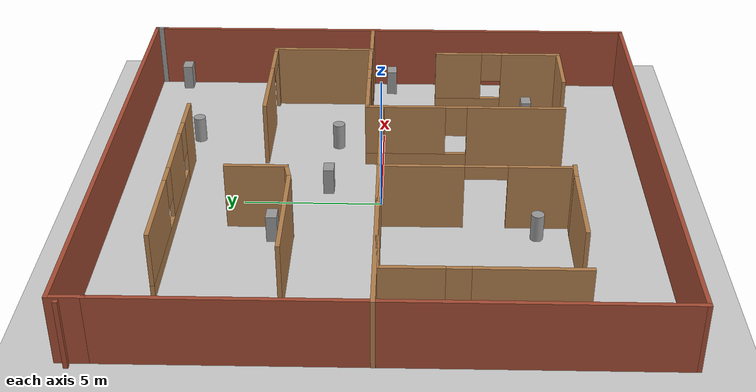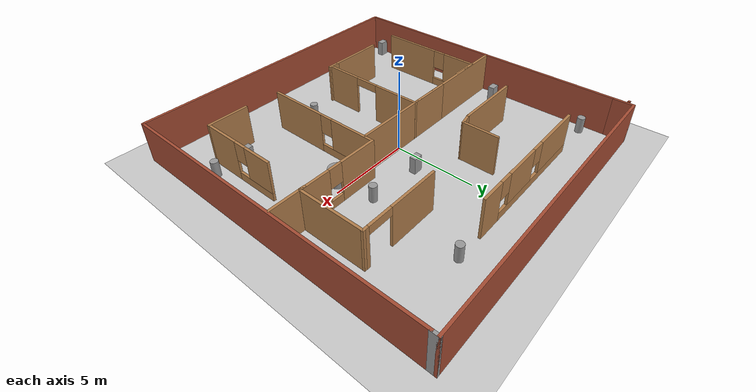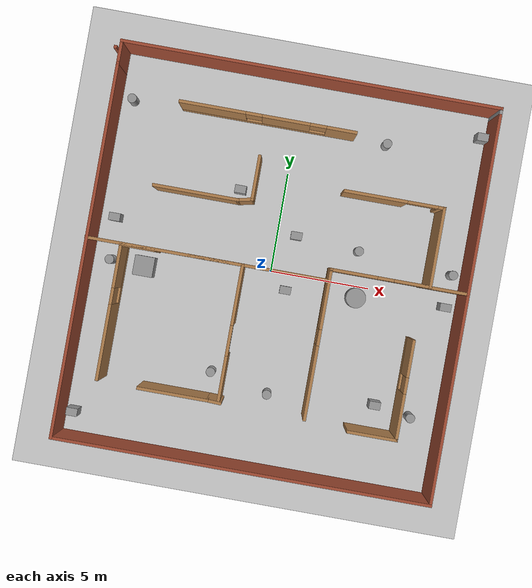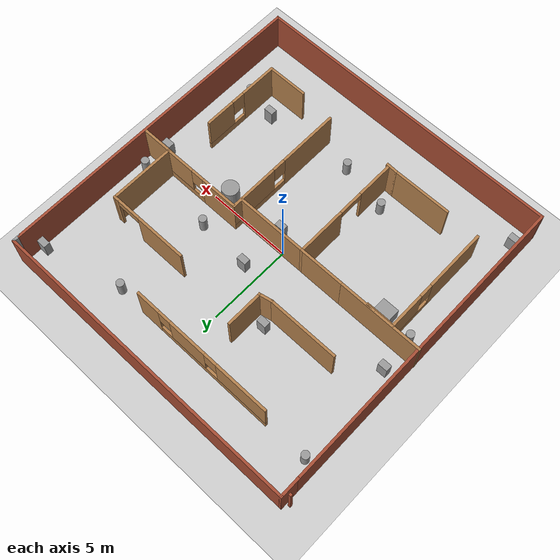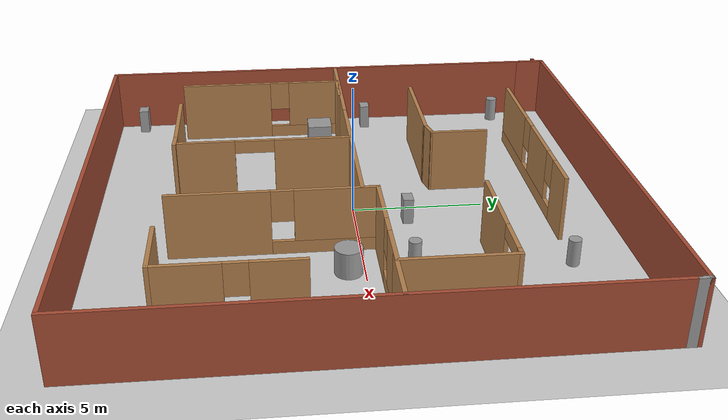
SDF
<sdf version="1.7">
 <world name="default">
  <light name="sun" type="directional">
   <pose>0 0 10 0 -0 0</pose>
   <diffuse>0.8 0.8 0.8 1</diffuse>
   <specular>0.2 0.2 0.2 1</specular>
   <attenuation>
    <range>1000</range>
    <constant>0.9</constant>
    <linear>0.01</linear>
    <quadratic>0.001</quadratic>
   </attenuation>
   <direction>-0.5 0.1 -0.9</direction>
   <spot><inner_angle>0</inner_angle><outer_angle>0</outer_angle><falloff>0</falloff></spot>
  </light>
  <model name="ground_plane">
   <static>1</static>
   <link name="link">
    <collision name="collision">
     <geometry><plane><normal>0 0 1</normal><size>100 100</size></plane></geometry>
     <surface><friction><ode><mu>100</mu><mu2>50</mu2></ode></friction></surface>
    </collision>
    <visual name="visual">
     <cast_shadows>0</cast_shadows>
     <geometry><plane><normal>0 0 1</normal><size>100 100</size></plane></geometry>
     <material>
      <script><uri>file://media/materials/scripts/gazebo.material</uri><name>Gazebo/Grey</name></script>
     </material>
    </visual>
   </link>
  </model>
  <gravity>0 0 -9.8</gravity>
  <magnetic_field>6e-06 2.3e-05 -4.2e-05</magnetic_field>
  <atmosphere type="adiabatic"/>
  <physics type="ode">
   <max_step_size>0.001</max_step_size>
   <real_time_factor>1</real_time_factor>
   <real_time_update_rate>1000</real_time_update_rate>
  </physics>
  <scene><ambient>0.4 0.4 0.4 1</ambient><background>0.7 0.7 0.7 1</background><shadows>1</shadows></scene>
  <audio><device>default</device></audio>
  <spherical_coordinates>
   <surface_model>EARTH_WGS84</surface_model>
   <latitude_deg>0</latitude_deg>
   <longitude_deg>0</longitude_deg>
   <elevation>0</elevation>
   <heading_deg>0</heading_deg>
  </spherical_coordinates>
  <model name="WorldA">
   <pose>0.162375 -0.049252 0 0 -0 0</pose>
   <link name="Wall_10">
    <collision name="Wall_10_Collision">
     <geometry><box><size>0.15 0.15 2.5</size></box></geometry>
     <pose>0 0 1.25 0 -0 0</pose>
    </collision>
    <visual name="Wall_10_Visual">
     <pose>0 0 1.25 0 -0 0</pose>
     <geometry><box><size>0.15 0.15 2.5</size></box></geometry>
     <material>
      <script><uri>file://media/materials/scripts/gazebo.material</uri><name>Gazebo/Bricks</name></script>
      <ambient>1 1 1 1</ambient>
     </material>
     <meta><layer>0</layer></meta>
    </visual>
    <pose>-9.425 9.375 0 0 -0 0</pose>
   </link>
   <link name="Wall_13">
    <collision name="Wall_13_Collision">
     <geometry><box><size>1.25 0.15 2.5</size></box></geometry>
     <pose>0 0 1.25 0 -0 0</pose>
    </collision>
    <visual name="Wall_13_Visual">
     <pose>0 0 1.25 0 -0 0</pose>
     <geometry><box><size>1.25 0.15 2.5</size></box></geometry>
     <material>
      <script><uri>file://media/materials/scripts/gazebo.material</uri><name>Gazebo/Bricks</name></script>
      <ambient>1 1 1 1</ambient>
     </material>
     <meta><layer>0</layer></meta>
    </visual>
    <pose>-9.175 9.175 0 0 -0 1.5708</pose>
   </link>
   <link name="Wall_14">
    <collision name="Wall_14_Collision">
     <geometry><box><size>18.75 0.15 2.5</size></box></geometry>
     <pose>0 0 1.25 0 -0 0</pose>
    </collision>
    <visual name="Wall_14_Visual">
     <pose>0 0 1.25 0 -0 0</pose>
     <geometry><box><size>18.75 0.15 2.5</size></box></geometry>
     <material>
      <script><uri>file://media/materials/scripts/gazebo.material</uri><name>Gazebo/Bricks</name></script>
      <ambient>1 1 1 1</ambient>
     </material>
     <meta><layer>0</layer></meta>
    </visual>
    <pose>0.125 9.725 0 0 -0 0</pose>
   </link>
   <link name="Wall_15">
    <collision name="Wall_15_Collision">
     <geometry><box><size>0.15 0.15 2.5</size></box></geometry>
     <pose>0 0 1.25 0 -0 0</pose>
    </collision>
    <visual name="Wall_15_Visual">
     <pose>0 0 1.25 0 -0 0</pose>
     <geometry><box><size>0.15 0.15 2.5</size></box></geometry>
     <material>
      <script><uri>file://media/materials/scripts/gazebo.material</uri><name>Gazebo/Grey</name></script>
      <ambient>1 1 1 1</ambient>
     </material>
     <meta><layer>0</layer></meta>
    </visual>
    <pose>9.425 9.725 0 0 -0 0</pose>
   </link>
   <link name="Wall_16">
    <collision name="Wall_16_Collision">
     <geometry><box><size>0.5 0.15 2.5</size></box></geometry>
     <pose>0 0 1.25 0 -0 0</pose>
    </collision>
    <visual name="Wall_16_Visual">
     <pose>0 0 1.25 0 -0 0</pose>
     <geometry><box><size>0.5 0.15 2.5</size></box></geometry>
     <material>
      <script><uri>file://media/materials/scripts/gazebo.material</uri><name>Gazebo/Grey</name></script>
      <ambient>1 1 1 1</ambient>
     </material>
     <meta><layer>0</layer></meta>
    </visual>
    <pose>9.425 9.55 0 0 -0 -1.5708</pose>
   </link>
   <link name="Wall_20">
    <pose>2.71542 -3.02463 0 0 -0 1.5708</pose>
    <visual name="Wall_20_Visual_0">
     <pose>-1.90731 0 1.25 0 -0 0</pose>
     <geometry><box><size>3.68538 0.15 2.5</size></box></geometry>
     <material>
      <script><uri>file://media/materials/scripts/gazebo.material</uri><name>Gazebo/Wood</name></script>
      <ambient>1 1 1 1</ambient>
     </material>
     <meta><layer>0</layer></meta>
    </visual>
    <collision name="Wall_20_Collision_0">
     <geometry><box><size>3.68538 0.15 2.5</size></box></geometry>
     <pose>-1.90731 0 1.25 0 -0 0</pose>
    </collision>
    <visual name="Wall_20_Visual_1">
     <pose>1.84269 0 0.25 0 -0 0</pose>
     <geometry><box><size>3.81462 0.15 0.5</size></box></geometry>
     <material>
      <script><uri>file://media/materials/scripts/gazebo.material</uri><name>Gazebo/Wood</name></script>
      <ambient>1 1 1 1</ambient>
     </material>
     <meta><layer>0</layer></meta>
    </visual>
    <collision name="Wall_20_Collision_1">
     <geometry><box><size>3.81462 0.15 0.5</size></box></geometry>
     <pose>1.84269 0 0.25 0 -0 0</pose>
    </collision>
    <visual name="Wall_20_Visual_2">
     <pose>2.24269 0 1.5 0 -0 0</pose>
     <geometry><box><size>3.01462 0.15 2</size></box></geometry>
     <material>
      <script><uri>file://media/materials/scripts/gazebo.material</uri><name>Gazebo/Wood</name></script>
      <ambient>1 1 1 1</ambient>
     </material>
     <meta><layer>0</layer></meta>
    </visual>
    <collision name="Wall_20_Collision_2">
     <geometry><box><size>3.01462 0.15 2</size></box></geometry>
     <pose>2.24269 0 1.5 0 -0 0</pose>
    </collision>
    <visual name="Wall_20_Visual_3">
     <pose>0.335379 0 1.9 0 -0 0</pose>
     <geometry><box><size>0.8 0.15 1.2</size></box></geometry>
     <material>
      <script><uri>file://media/materials/scripts/gazebo.material</uri><name>Gazebo/Wood</name></script>
      <ambient>1 1 1 1</ambient>
     </material>
     <meta><layer>0</layer></meta>
    </visual>
    <collision name="Wall_20_Collision_3">
     <geometry><box><size>0.8 0.15 1.2</size></box></geometry>
     <pose>0.335379 0 1.9 0 -0 0</pose>
    </collision>
   </link>
   <link name="Wall_21">
    <pose>5.14042 0.650374 0 0 -0 0</pose>
    <visual name="Wall_21_Visual_0">
     <pose>-1.32571 0 1.25 0 -0 0</pose>
     <geometry><box><size>2.34859 0.15 2.5</size></box></geometry>
     <material>
      <script><uri>file://media/materials/scripts/gazebo.material</uri><name>Gazebo/Wood</name></script>
      <ambient>1 1 1 1</ambient>
     </material>
     <meta><layer>0</layer></meta>
    </visual>
    <collision name="Wall_21_Collision_0">
     <geometry><box><size>2.34859 0.15 2.5</size></box></geometry>
     <pose>-1.32571 0 1.25 0 -0 0</pose>
    </collision>
    <visual name="Wall_21_Visual_1">
     <pose>1.17429 0 0.25 0 -0 0</pose>
     <geometry><box><size>2.65141 0.15 0.5</size></box></geometry>
     <material>
      <script><uri>file://media/materials/scripts/gazebo.material</uri><name>Gazebo/Wood</name></script>
      <ambient>1 1 1 1</ambient>
     </material>
     <meta><layer>0</layer></meta>
    </visual>
    <collision name="Wall_21_Collision_1">
     <geometry><box><size>2.65141 0.15 0.5</size></box></geometry>
     <pose>1.17429 0 0.25 0 -0 0</pose>
    </collision>
    <visual name="Wall_21_Visual_2">
     <pose>1.57429 0 1.5 0 -0 0</pose>
     <geometry><box><size>1.85141 0.15 2</size></box></geometry>
     <material>
      <script><uri>file://media/materials/scripts/gazebo.material</uri><name>Gazebo/Wood</name></script>
      <ambient>1 1 1 1</ambient>
     </material>
     <meta><layer>0</layer></meta>
    </visual>
    <collision name="Wall_21_Collision_2">
     <geometry><box><size>1.85141 0.15 2</size></box></geometry>
     <pose>1.57429 0 1.5 0 -0 0</pose>
    </collision>
    <visual name="Wall_21_Visual_3">
     <pose>0.248586 0 1.9 0 -0 0</pose>
     <geometry><box><size>0.8 0.15 1.2</size></box></geometry>
     <material>
      <script><uri>file://media/materials/scripts/gazebo.material</uri><name>Gazebo/Wood</name></script>
      <ambient>1 1 1 1</ambient>
     </material>
     <meta><layer>0</layer></meta>
    </visual>
    <collision name="Wall_21_Collision_3">
     <geometry><box><size>0.8 0.15 1.2</size></box></geometry>
     <pose>0.248586 0 1.9 0 -0 0</pose>
    </collision>
   </link>
   <link name="Wall_22">
    <collision name="Wall_22_Collision">
     <geometry><box><size>4 0.15 2.5</size></box></geometry>
     <pose>0 0 1.25 0 -0 0</pose>
    </collision>
    <visual name="Wall_22_Visual">
     <pose>0 0 1.25 0 -0 0</pose>
     <geometry><box><size>4 0.15 2.5</size></box></geometry>
     <material>
      <script><uri>file://media/materials/scripts/gazebo.material</uri><name>Gazebo/Wood</name></script>
      <ambient>1 1 1 1</ambient>
     </material>
     <meta><layer>0</layer></meta>
    </visual>
    <pose>7.56542 2.57537 0 0 -0 1.5708</pose>
   </link>
   <link name="Wall_23">
    <pose>5.14042 4.50037 0 0 -0 3.14159</pose>
    <visual name="Wall_23_Visual_0">
     <pose>-2.31215 0 1.25 0 -0 0</pose>
     <geometry><box><size>0.375693 0.15 2.5</size></box></geometry>
     <material>
      <script><uri>file://media/materials/scripts/gazebo.material</uri><name>Gazebo/Wood</name></script>
      <ambient>1 1 1 1</ambient>
     </material>
     <meta><layer>0</layer></meta>
    </visual>
    <collision name="Wall_23_Collision_0">
     <geometry><box><size>0.375693 0.15 2.5</size></box></geometry>
     <pose>-2.31215 0 1.25 0 -0 0</pose>
    </collision>
    <visual name="Wall_23_Visual_1">
     <pose>0.937847 0 1.25 0 -0 0</pose>
     <geometry><box><size>3.12431 0.15 2.5</size></box></geometry>
     <material>
      <script><uri>file://media/materials/scripts/gazebo.material</uri><name>Gazebo/Wood</name></script>
      <ambient>1 1 1 1</ambient>
     </material>
     <meta><layer>0</layer></meta>
    </visual>
    <collision name="Wall_23_Collision_1">
     <geometry><box><size>3.12431 0.15 2.5</size></box></geometry>
     <pose>0.937847 0 1.25 0 -0 0</pose>
    </collision>
    <visual name="Wall_23_Visual_2">
     <pose>-1.37431 0 2.25 0 -0 0</pose>
     <geometry><box><size>1.5 0.15 0.5</size></box></geometry>
     <material>
      <script><uri>file://media/materials/scripts/gazebo.material</uri><name>Gazebo/Wood</name></script>
      <ambient>1 1 1 1</ambient>
     </material>
     <meta><layer>0</layer></meta>
    </visual>
    <collision name="Wall_23_Collision_2">
     <geometry><box><size>1.5 0.15 0.5</size></box></geometry>
     <pose>-1.37431 0 2.25 0 -0 0</pose>
    </collision>
   </link>
   <link name="Wall_25">
    <pose>-1.58458 7.35037 0 0 -0 3.14159</pose>
    <visual name="Wall_25_Visual_0">
     <pose>-3.62285 0 1.25 0 -0 0</pose>
     <geometry><box><size>1.5043 0.15 2.5</size></box></geometry>
     <material>
      <script><uri>file://media/materials/scripts/gazebo.material</uri><name>Gazebo/Wood</name></script>
      <ambient>1 1 1 1</ambient>
     </material>
     <meta><layer>0</layer></meta>
    </visual>
    <collision name="Wall_25_Collision_0">
     <geometry><box><size>1.5043 0.15 2.5</size></box></geometry>
     <pose>-3.62285 0 1.25 0 -0 0</pose>
    </collision>
    <visual name="Wall_25_Visual_1">
     <pose>0.752148 0 0.25 0 -0 0</pose>
     <geometry><box><size>7.2457 0.15 0.5</size></box></geometry>
     <material>
      <script><uri>file://media/materials/scripts/gazebo.material</uri><name>Gazebo/Wood</name></script>
      <ambient>1 1 1 1</ambient>
     </material>
     <meta><layer>0</layer></meta>
    </visual>
    <collision name="Wall_25_Collision_1">
     <geometry><box><size>7.2457 0.15 0.5</size></box></geometry>
     <pose>0.752148 0 0.25 0 -0 0</pose>
    </collision>
    <visual name="Wall_25_Visual_2">
     <pose>-0.88766 0 1.5 0 -0 0</pose>
     <geometry><box><size>2.36609 0.15 2</size></box></geometry>
     <material>
      <script><uri>file://media/materials/scripts/gazebo.material</uri><name>Gazebo/Wood</name></script>
      <ambient>1 1 1 1</ambient>
     </material>
     <meta><layer>0</layer></meta>
    </visual>
    <collision name="Wall_25_Collision_2">
     <geometry><box><size>2.36609 0.15 2</size></box></geometry>
     <pose>-0.88766 0 1.5 0 -0 0</pose>
    </collision>
    <visual name="Wall_25_Visual_3">
     <pose>2.73519 0 1.5 0 -0 0</pose>
     <geometry><box><size>3.27962 0.15 2</size></box></geometry>
     <material>
      <script><uri>file://media/materials/scripts/gazebo.material</uri><name>Gazebo/Wood</name></script>
      <ambient>1 1 1 1</ambient>
     </material>
     <meta><layer>0</layer></meta>
    </visual>
    <collision name="Wall_25_Collision_3">
     <geometry><box><size>3.27962 0.15 2</size></box></geometry>
     <pose>2.73519 0 1.5 0 -0 0</pose>
    </collision>
    <visual name="Wall_25_Visual_4">
     <pose>-2.4707 0 1.9 0 -0 0</pose>
     <geometry><box><size>0.8 0.15 1.2</size></box></geometry>
     <material>
      <script><uri>file://media/materials/scripts/gazebo.material</uri><name>Gazebo/Wood</name></script>
      <ambient>1 1 1 1</ambient>
     </material>
     <meta><layer>0</layer></meta>
    </visual>
    <collision name="Wall_25_Collision_4">
     <geometry><box><size>0.8 0.15 1.2</size></box></geometry>
     <pose>-2.4707 0 1.9 0 -0 0</pose>
    </collision>
    <visual name="Wall_25_Visual_5">
     <pose>0.695384 0 1.9 0 -0 0</pose>
     <geometry><box><size>0.8 0.15 1.2</size></box></geometry>
     <material>
      <script><uri>file://media/materials/scripts/gazebo.material</uri><name>Gazebo/Wood</name></script>
      <ambient>1 1 1 1</ambient>
     </material>
     <meta><layer>0</layer></meta>
    </visual>
    <collision name="Wall_25_Collision_5">
     <geometry><box><size>0.8 0.15 1.2</size></box></geometry>
     <pose>0.695384 0 1.9 0 -0 0</pose>
    </collision>
   </link>
   <link name="Wall_28">
    <pose>-1.53458 -3.19963 0 0 -0 1.5708</pose>
    <visual name="Wall_28_Visual_0">
     <pose>-2.26463 0 1.25 0 -0 0</pose>
     <geometry><box><size>2.22073 0.15 2.5</size></box></geometry>
     <material>
      <script><uri>file://media/materials/scripts/gazebo.material</uri><name>Gazebo/Wood</name></script>
      <ambient>1 1 1 1</ambient>
     </material>
     <meta><layer>0</layer></meta>
    </visual>
    <collision name="Wall_28_Collision_0">
     <geometry><box><size>2.22073 0.15 2.5</size></box></geometry>
     <pose>-2.26463 0 1.25 0 -0 0</pose>
    </collision>
    <visual name="Wall_28_Visual_1">
     <pose>1.86037 0 1.25 0 -0 0</pose>
     <geometry><box><size>3.02927 0.15 2.5</size></box></geometry>
     <material>
      <script><uri>file://media/materials/scripts/gazebo.material</uri><name>Gazebo/Wood</name></script>
      <ambient>1 1 1 1</ambient>
     </material>
     <meta><layer>0</layer></meta>
    </visual>
    <collision name="Wall_28_Collision_1">
     <geometry><box><size>3.02927 0.15 2.5</size></box></geometry>
     <pose>1.86037 0 1.25 0 -0 0</pose>
    </collision>
    <visual name="Wall_28_Visual_2">
     <pose>-0.404269 0 2.25 0 -0 0</pose>
     <geometry><box><size>1.5 0.15 0.5</size></box></geometry>
     <material>
      <script><uri>file://media/materials/scripts/gazebo.material</uri><name>Gazebo/Wood</name></script>
      <ambient>1 1 1 1</ambient>
     </material>
     <meta><layer>0</layer></meta>
    </visual>
    <collision name="Wall_28_Collision_2">
     <geometry><box><size>1.5 0.15 0.5</size></box></geometry>
     <pose>-0.404269 0 2.25 0 -0 0</pose>
    </collision>
   </link>
   <link name="Wall_29">
    <collision name="Wall_29_Collision">
     <geometry><box><size>2.75 0.15 2.5</size></box></geometry>
     <pose>0 0 1.25 0 -0 0</pose>
    </collision>
    <visual name="Wall_29_Visual">
     <pose>0 0 1.25 0 -0 0</pose>
     <geometry><box><size>2.75 0.15 2.5</size></box></geometry>
     <material>
      <script><uri>file://media/materials/scripts/gazebo.material</uri><name>Gazebo/Wood</name></script>
      <ambient>1 1 1 1</ambient>
     </material>
     <meta><layer>0</layer></meta>
    </visual>
    <pose>-2.83458 0.100374 0 0 -0 3.14159</pose>
   </link>
   <link name="Wall_32">
    <pose>-7.48642 -3.25891 0 0 -0 1.5708</pose>
    <visual name="Wall_32_Visual_0">
     <pose>-1.49713 0 1.25 0 -0 0</pose>
     <geometry><box><size>3.75574 0.15 2.5</size></box></geometry>
     <material>
      <script><uri>file://media/materials/scripts/gazebo.material</uri><name>Gazebo/Wood</name></script>
      <ambient>1 1 1 1</ambient>
     </material>
     <meta><layer>0</layer></meta>
    </visual>
    <collision name="Wall_32_Collision_0">
     <geometry><box><size>3.75574 0.15 2.5</size></box></geometry>
     <pose>-1.49713 0 1.25 0 -0 0</pose>
    </collision>
    <visual name="Wall_32_Visual_1">
     <pose>1.87787 0 0.25 0 -0 0</pose>
     <geometry><box><size>2.99426 0.15 0.5</size></box></geometry>
     <material>
      <script><uri>file://media/materials/scripts/gazebo.material</uri><name>Gazebo/Wood</name></script>
      <ambient>1 1 1 1</ambient>
     </material>
     <meta><layer>0</layer></meta>
    </visual>
    <collision name="Wall_32_Collision_1">
     <geometry><box><size>2.99426 0.15 0.5</size></box></geometry>
     <pose>1.87787 0 0.25 0 -0 0</pose>
    </collision>
    <visual name="Wall_32_Visual_2">
     <pose>2.27787 0 1.5 0 -0 0</pose>
     <geometry><box><size>2.19426 0.15 2</size></box></geometry>
     <material>
      <script><uri>file://media/materials/scripts/gazebo.material</uri><name>Gazebo/Wood</name></script>
      <ambient>1 1 1 1</ambient>
     </material>
     <meta><layer>0</layer></meta>
    </visual>
    <collision name="Wall_32_Collision_2">
     <geometry><box><size>2.19426 0.15 2</size></box></geometry>
     <pose>2.27787 0 1.5 0 -0 0</pose>
    </collision>
    <visual name="Wall_32_Visual_3">
     <pose>0.780736 0 1.9 0 -0 0</pose>
     <geometry><box><size>0.8 0.15 1.2</size></box></geometry>
     <material>
      <script><uri>file://media/materials/scripts/gazebo.material</uri><name>Gazebo/Wood</name></script>
      <ambient>1 1 1 1</ambient>
     </material>
     <meta><layer>0</layer></meta>
    </visual>
    <collision name="Wall_32_Collision_3">
     <geometry><box><size>0.8 0.15 1.2</size></box></geometry>
     <pose>0.780736 0 1.9 0 -0 0</pose>
    </collision>
   </link>
   <link name="Wall_33">
    <collision name="Wall_33_Collision">
     <geometry><box><size>1.75 0.15 2.5</size></box></geometry>
     <pose>0 0 1.25 0 -0 0</pose>
    </collision>
    <visual name="Wall_33_Visual">
     <pose>0 0 1.25 0 -0 0</pose>
     <geometry><box><size>1.75 0.15 2.5</size></box></geometry>
     <material>
      <script><uri>file://media/materials/scripts/gazebo.material</uri><name>Gazebo/Wood</name></script>
      <ambient>1 1 1 1</ambient>
     </material>
     <meta><layer>0</layer></meta>
    </visual>
    <pose>-6.68642 0.041089 0 0 -0 0</pose>
   </link>
   <link name="Wall_35">
    <collision name="Wall_35_Collision">
     <geometry><box><size>4.25 0.15 2.5</size></box></geometry>
     <pose>0 0 1.25 0 -0 0</pose>
    </collision>
    <visual name="Wall_35_Visual">
     <pose>0 0 1.25 0 -0 0</pose>
     <geometry><box><size>4.25 0.15 2.5</size></box></geometry>
     <material>
      <script><uri>file://media/materials/scripts/gazebo.material</uri><name>Gazebo/Wood</name></script>
      <ambient>1 1 1 1</ambient>
     </material>
     <meta><layer>0</layer></meta>
    </visual>
    <pose>-4.38106 3.15043 0 0 -0 0</pose>
   </link>
   <link name="Wall_38">
    <collision name="Wall_38_Collision">
     <geometry><box><size>2.5 0.15 2.5</size></box></geometry>
     <pose>0 0 1.25 0 -0 0</pose>
    </collision>
    <visual name="Wall_38_Visual">
     <pose>0 0 1.25 0 -0 0</pose>
     <geometry><box><size>2.5 0.15 2.5</size></box></geometry>
     <material>
      <script><uri>file://media/materials/scripts/gazebo.material</uri><name>Gazebo/Wood</name></script>
      <ambient>1 1 1 1</ambient>
     </material>
     <meta><layer>0</layer></meta>
    </visual>
    <pose>6.07151 -6.9107 0 0 -0 0</pose>
   </link>
   <link name="Wall_39">
    <pose>7.2465 -4.4857 0 0 -0 1.5708</pose>
    <visual name="Wall_39_Visual_0">
     <pose>-1.32571 0 1.25 0 -0 0</pose>
     <geometry><box><size>2.34859 0.15 2.5</size></box></geometry>
     <material>
      <script><uri>file://media/materials/scripts/gazebo.material</uri><name>Gazebo/Wood</name></script>
      <ambient>1 1 1 1</ambient>
     </material>
     <meta><layer>0</layer></meta>
    </visual>
    <collision name="Wall_39_Collision_0">
     <geometry><box><size>2.34859 0.15 2.5</size></box></geometry>
     <pose>-1.32571 0 1.25 0 -0 0</pose>
    </collision>
    <visual name="Wall_39_Visual_1">
     <pose>1.17429 0 0.25 0 -0 0</pose>
     <geometry><box><size>2.65141 0.15 0.5</size></box></geometry>
     <material>
      <script><uri>file://media/materials/scripts/gazebo.material</uri><name>Gazebo/Wood</name></script>
      <ambient>1 1 1 1</ambient>
     </material>
     <meta><layer>0</layer></meta>
    </visual>
    <collision name="Wall_39_Collision_1">
     <geometry><box><size>2.65141 0.15 0.5</size></box></geometry>
     <pose>1.17429 0 0.25 0 -0 0</pose>
    </collision>
    <visual name="Wall_39_Visual_2">
     <pose>1.57429 0 1.5 0 -0 0</pose>
     <geometry><box><size>1.85141 0.15 2</size></box></geometry>
     <material>
      <script><uri>file://media/materials/scripts/gazebo.material</uri><name>Gazebo/Wood</name></script>
      <ambient>1 1 1 1</ambient>
     </material>
     <meta><layer>0</layer></meta>
    </visual>
    <collision name="Wall_39_Collision_2">
     <geometry><box><size>1.85141 0.15 2</size></box></geometry>
     <pose>1.57429 0 1.5 0 -0 0</pose>
    </collision>
    <visual name="Wall_39_Visual_3">
     <pose>0.248586 0 1.9 0 -0 0</pose>
     <geometry><box><size>0.8 0.15 1.2</size></box></geometry>
     <material>
      <script><uri>file://media/materials/scripts/gazebo.material</uri><name>Gazebo/Wood</name></script>
      <ambient>1 1 1 1</ambient>
     </material>
     <meta><layer>0</layer></meta>
    </visual>
    <collision name="Wall_39_Collision_3">
     <geometry><box><size>0.8 0.15 1.2</size></box></geometry>
     <pose>0.248586 0 1.9 0 -0 0</pose>
    </collision>
   </link>
   <link name="Wall_43">
    <collision name="Wall_43_Collision">
     <geometry><box><size>3.5 0.15 2.5</size></box></geometry>
     <pose>0 0 1.25 0 -0 0</pose>
    </collision>
    <visual name="Wall_43_Visual">
     <pose>0 0 1.25 0 -0 0</pose>
     <geometry><box><size>3.5 0.15 2.5</size></box></geometry>
     <material>
      <script><uri>file://media/materials/scripts/gazebo.material</uri><name>Gazebo/Wood</name></script>
      <ambient>1 1 1 1</ambient>
     </material>
     <meta><layer>0</layer></meta>
    </visual>
    <pose>-3.77105 -6.62927 0 0 -0 0</pose>
   </link>
   <link name="Wall_44">
    <collision name="Wall_44_Collision">
     <geometry><box><size>0.739326 0.15 2.5</size></box></geometry>
     <pose>0 0 1.25 0 -0 0</pose>
    </collision>
    <visual name="Wall_44_Visual">
     <pose>0 0 1.25 0 -0 0</pose>
     <geometry><box><size>0.739326 0.15 2.5</size></box></geometry>
     <material>
      <script><uri>file://media/materials/scripts/gazebo.material</uri><name>Gazebo/Wood</name></script>
      <ambient>1 1 1 1</ambient>
     </material>
     <meta><layer>0</layer></meta>
    </visual>
    <pose>-1.73132 -6.64239 0 0 -0 -0.044532</pose>
   </link>
   <link name="Wall_48">
    <collision name="Wall_48_Collision">
     <geometry><box><size>2.25 0.15 2.5</size></box></geometry>
     <pose>0 0 1.25 0 -0 0</pose>
    </collision>
    <visual name="Wall_48_Visual">
     <pose>0 0 1.25 0 -0 0</pose>
     <geometry><box><size>2.25 0.15 2.5</size></box></geometry>
     <material>
      <script><uri>file://media/materials/scripts/gazebo.material</uri><name>Gazebo/Wood</name></script>
      <ambient>1 1 1 1</ambient>
     </material>
     <meta><layer>0</layer></meta>
    </visual>
    <pose>-1.64674 4.35187 0 0 -0 -1.5708</pose>
   </link>
   <link name="Wall_49">
    <collision name="Wall_49_Collision">
     <geometry><box><size>0.850869 0.15 2.5</size></box></geometry>
     <pose>0 0 1.25 0 -0 0</pose>
    </collision>
    <visual name="Wall_49_Visual">
     <pose>0 0 1.25 0 -0 0</pose>
     <geometry><box><size>0.850869 0.15 2.5</size></box></geometry>
     <material>
      <script><uri>file://media/materials/scripts/gazebo.material</uri><name>Gazebo/Wood</name></script>
      <ambient>1 1 1 1</ambient>
     </material>
     <meta><layer>0</layer></meta>
    </visual>
    <pose>-1.9889 3.22615 0 0 -0 -2.9238</pose>
   </link>
   <link name="Wall_5">
    <collision name="Wall_5_Collision">
     <geometry><box><size>18.5 0.15 2.5</size></box></geometry>
     <pose>0 0 1.25 0 -0 0</pose>
    </collision>
    <visual name="Wall_5_Visual">
     <pose>0 0 1.25 0 -0 0</pose>
     <geometry><box><size>18.5 0.15 2.5</size></box></geometry>
     <material>
      <script><uri>file://media/materials/scripts/gazebo.material</uri><name>Gazebo/Bricks</name></script>
      <ambient>1 1 1 1</ambient>
     </material>
     <meta><layer>0</layer></meta>
    </visual>
    <pose>-9.175 -0.549999 0 0 -0 1.5708</pose>
   </link>
   <link name="Wall_7">
    <collision name="Wall_7_Collision">
     <geometry><box><size>18.75 0.15 2.5</size></box></geometry>
     <pose>0 0 1.25 0 -0 0</pose>
    </collision>
    <visual name="Wall_7_Visual">
     <pose>0 0 1.25 0 -0 0</pose>
     <geometry><box><size>18.75 0.15 2.5</size></box></geometry>
     <material>
      <script><uri>file://media/materials/scripts/gazebo.material</uri><name>Gazebo/Bricks</name></script>
      <ambient>1 1 1 1</ambient>
     </material>
     <meta><layer>0</layer></meta>
    </visual>
    <pose>0.125 -9.725 0 0 -0 0</pose>
   </link>
   <link name="Wall_8">
    <collision name="Wall_8_Collision">
     <geometry><box><size>19.25 0.15 2.5</size></box></geometry>
     <pose>0 0 1.25 0 -0 0</pose>
    </collision>
    <visual name="Wall_8_Visual">
     <pose>0 0 1.25 0 -0 0</pose>
     <geometry><box><size>19.25 0.15 2.5</size></box></geometry>
     <material>
      <script><uri>file://media/materials/scripts/gazebo.material</uri><name>Gazebo/Bricks</name></script>
      <ambient>1 1 1 1</ambient>
     </material>
     <meta><layer>0</layer></meta>
    </visual>
    <pose>9.425 -0.174999 0 0 -0 1.5708</pose>
   </link>
   <static>1</static>
  </model>
  <model name="world_AB">
   <pose>0.268356 0.314358 0 0 -0 0</pose>
   <link name="Wall_2">
    <collision name="Wall_2_Collision">
     <geometry><box><size>12 0.15 2.5</size></box></geometry>
     <pose>0 0 1.25 0 -0 0</pose>
    </collision>
    <visual name="Wall_2_Visual">
     <pose>0 0 1.25 0 -0 0</pose>
     <geometry><box><size>12 0.15 2.5</size></box></geometry>
     <material>
      <script><uri>file://media/materials/scripts/gazebo.material</uri><name>Gazebo/Wood</name></script>
      <ambient>1 1 1 1</ambient>
     </material>
     <meta><layer>0</layer></meta>
    </visual>
    <pose>-3.3735 -0.266002 0 0 -0 0</pose>
   </link>
   <link name="Wall_4">
    <collision name="Wall_4_Collision">
     <geometry><box><size>2.25 0.15 2.5</size></box></geometry>
     <pose>0 0 1.25 0 -0 0</pose>
    </collision>
    <visual name="Wall_4_Visual">
     <pose>0 0 1.25 0 -0 0</pose>
     <geometry><box><size>2.25 0.15 2.5</size></box></geometry>
     <material>
      <script><uri>file://media/materials/scripts/gazebo.material</uri><name>Gazebo/Wood</name></script>
      <ambient>1 1 1 1</ambient>
     </material>
     <meta><layer>0</layer></meta>
    </visual>
    <pose>8.2485 0.266002 0 0 -0 3.14159</pose>
   </link>
   <static>1</static>
  </model>
  <model name="unit_cylinder">
   <pose>4.40633 -0.567615 0.5 1e-06 -0 -1e-06</pose>
   <link name="link">
    <inertial>
     <mass>1</mass>
     <inertia><ixx>0.145833</ixx><ixy>0</ixy><ixz>0</ixz><iyy>0.145833</iyy><iyz>0</iyz><izz>0.125</izz></inertia>
    </inertial>
    <collision name="collision">
     <geometry><cylinder><radius>0.499997</radius><length>1</length></cylinder></geometry>
    </collision>
    <visual name="visual">
     <geometry><cylinder><radius>0.499997</radius><length>1</length></cylinder></geometry>
     <material>
      <script><name>Gazebo/Grey</name><uri>file://media/materials/scripts/gazebo.material</uri></script>
     </material>
    </visual>
   </link>
  </model>
  <model name="unit_cylinder_clone">
   <pose>-7.99895 -0.819979 0.499991 0 -0 3e-06</pose>
   <link name="link">
    <inertial>
     <mass>1</mass>
     <inertia><ixx>0.145833</ixx><ixy>0</ixy><ixz>0</ixz><iyy>0.145833</iyy><iyz>0</iyz><izz>0.125</izz></inertia>
    </inertial>
    <collision name="collision">
     <geometry><cylinder><radius>0.229932</radius><length>1</length></cylinder></geometry>
    </collision>
    <visual name="visual">
     <geometry><cylinder><radius>0.229932</radius><length>1</length></cylinder></geometry>
     <material>
      <script><name>Gazebo/Grey</name><uri>file://media/materials/scripts/gazebo.material</uri></script>
     </material>
    </visual>
   </link>
  </model>
  <model name="unit_cylinder_clone_0">
   <pose>0.892923 -6.08064 0.499999 1e-06 -0 7e-06</pose>
   <link name="link">
    <inertial>
     <mass>1</mass>
     <inertia><ixx>0.145833</ixx><ixy>0</ixy><ixz>0</ixz><iyy>0.145833</iyy><iyz>0</iyz><izz>0.125</izz></inertia>
    </inertial>
    <collision name="collision">
     <geometry><cylinder><radius>0.229932</radius><length>1</length></cylinder></geometry>
    </collision>
    <visual name="visual">
     <geometry><cylinder><radius>0.229932</radius><length>1</length></cylinder></geometry>
     <material>
      <script><name>Gazebo/Grey</name><uri>file://media/materials/scripts/gazebo.material</uri></script>
     </material>
    </visual>
   </link>
  </model>
  <model name="unit_cylinder_clone_1">
   <pose>8.13203 -5.97674 0.499999 1e-06 0 3e-06</pose>
   <link name="link">
    <inertial>
     <mass>1</mass>
     <inertia><ixx>0.145833</ixx><ixy>0</ixy><ixz>0</ixz><iyy>0.145833</iyy><iyz>0</iyz><izz>0.125</izz></inertia>
    </inertial>
    <collision name="collision">
     <geometry><cylinder><radius>0.229932</radius><length>1</length></cylinder></geometry>
    </collision>
    <visual name="visual">
     <geometry><cylinder><radius>0.229932</radius><length>1</length></cylinder></geometry>
     <material>
      <script><name>Gazebo/Grey</name><uri>file://media/materials/scripts/gazebo.material</uri></script>
     </material>
    </visual>
   </link>
  </model>
  <model name="unit_box">
   <pose>-6.26066 -0.862057 0.499995 -1e-05 -0 0</pose>
   <link name="link">
    <inertial>
     <mass>1</mass>
     <inertia>
      <ixx>0.166667</ixx>
      <ixy>0</ixy>
      <ixz>0</ixz>
      <iyy>0.166667</iyy>
      <iyz>0</iyz>
      <izz>0.166667</izz>
     </inertia>
    </inertial>
    <collision name="collision"><geometry><box><size>1 1 1</size></box></geometry></collision>
    <visual name="visual">
     <geometry><box><size>1 1 1</size></box></geometry>
     <material>
      <script><name>Gazebo/Grey</name><uri>file://media/materials/scripts/gazebo.material</uri></script>
     </material>
    </visual>
   </link>
  </model>
  <model name="unit_box_clone">
   <pose>6.28047 -5.66301 0.500001 2e-06 -1e-06 0.000686</pose>
   <link name="link">
    <inertial>
     <mass>1</mass>
     <inertia>
      <ixx>0.166667</ixx>
      <ixy>0</ixy>
      <ixz>0</ixz>
      <iyy>0.166667</iyy>
      <iyz>0</iyz>
      <izz>0.166667</izz>
     </inertia>
    </inertial>
    <collision name="collision"><geometry><box><size>0.567284 0.38985 1</size></box></geometry></collision>
    <visual name="visual">
     <geometry><box><size>0.567284 0.38985 1</size></box></geometry>
     <material>
      <script><name>Gazebo/Grey</name><uri>file://media/materials/scripts/gazebo.material</uri></script>
     </material>
    </visual>
   </link>
  </model>
  <model name="unit_box_clone_0">
   <pose>0.882777 -0.802329 0.5 0 -0 -0.000223</pose>
   <link name="link">
    <inertial>
     <mass>1</mass>
     <inertia>
      <ixx>0.166667</ixx>
      <ixy>0</ixy>
      <ixz>0</ixz>
      <iyy>0.166667</iyy>
      <iyz>0</iyz>
      <izz>0.166667</izz>
     </inertia>
    </inertial>
    <collision name="collision"><geometry><box><size>0.567284 0.38985 1</size></box></geometry></collision>
    <visual name="visual">
     <geometry><box><size>0.567284 0.38985 1</size></box></geometry>
     <material>
      <script><name>Gazebo/Grey</name><uri>file://media/materials/scripts/gazebo.material</uri></script>
     </material>
    </visual>
   </link>
  </model>
  <model name="unit_box_clone_1">
   <pose>-8.50788 -8.6323 0.5 -0 -0 -0.00025</pose>
   <link name="link">
    <inertial>
     <mass>1</mass>
     <inertia>
      <ixx>0.166667</ixx>
      <ixy>0</ixy>
      <ixz>0</ixz>
      <iyy>0.166667</iyy>
      <iyz>0</iyz>
      <izz>0.166667</izz>
     </inertia>
    </inertial>
    <collision name="collision"><geometry><box><size>0.567284 0.38985 1</size></box></geometry></collision>
    <visual name="visual">
     <geometry><box><size>0.567284 0.38985 1</size></box></geometry>
     <material>
      <script><name>Gazebo/Grey</name><uri>file://media/materials/scripts/gazebo.material</uri></script>
     </material>
    </visual>
   </link>
  </model>
  <model name="unit_cylinder_clone_0_clone">
   <pose>-2.0588 -5.46375 0.5 1e-06 -1e-06 9e-06</pose>
   <link name="link">
    <inertial>
     <mass>1</mass>
     <inertia><ixx>0.145833</ixx><ixy>0</ixy><ixz>0</ixz><iyy>0.145833</iyy><iyz>0</iyz><izz>0.125</izz></inertia>
    </inertial>
    <collision name="collision">
     <geometry><cylinder><radius>0.229932</radius><length>1</length></cylinder></geometry>
    </collision>
    <visual name="visual">
     <geometry><cylinder><radius>0.229932</radius><length>1</length></cylinder></geometry>
     <material>
      <script><name>Gazebo/Grey</name><uri>file://media/materials/scripts/gazebo.material</uri></script>
     </material>
    </visual>
   </link>
  </model>
  <model name="unit_box_clone_clone">
   <pose>8.88582 -0.241791 0.5 0 -0 0.000236</pose>
   <link name="link">
    <inertial>
     <mass>1</mass>
     <inertia>
      <ixx>0.166667</ixx>
      <ixy>0</ixy>
      <ixz>0</ixz>
      <iyy>0.166667</iyy>
      <iyz>0</iyz>
      <izz>0.166667</izz>
     </inertia>
    </inertial>
    <collision name="collision"><geometry><box><size>0.567284 0.38985 1</size></box></geometry></collision>
    <visual name="visual">
     <geometry><box><size>0.567284 0.38985 1</size></box></geometry>
     <material>
      <script><name>Gazebo/Grey</name><uri>file://media/materials/scripts/gazebo.material</uri></script>
     </material>
    </visual>
   </link>
  </model>
  <model name="unit_cylinder_clone_0_clone_0">
   <pose>8.98076 1.3999 0.5 1e-06 1e-06 7e-06</pose>
   <link name="link">
    <inertial>
     <mass>1</mass>
     <inertia><ixx>0.145833</ixx><ixy>0</ixy><ixz>0</ixz><iyy>0.145833</iyy><iyz>0</iyz><izz>0.125</izz></inertia>
    </inertial>
    <collision name="collision">
     <geometry><cylinder><radius>0.229932</radius><length>1</length></cylinder></geometry>
    </collision>
    <visual name="visual">
     <geometry><cylinder><radius>0.229932</radius><length>1</length></cylinder></geometry>
     <material>
      <script><name>Gazebo/Grey</name><uri>file://media/materials/scripts/gazebo.material</uri></script>
     </material>
    </visual>
   </link>
  </model>
  <model name="unit_cylinder_clone_0_clone_1">
   <pose>4.59856 7.26567 0.499991 0 -0 6e-06</pose>
   <link name="link">
    <inertial>
     <mass>1</mass>
     <inertia><ixx>0.145833</ixx><ixy>0</ixy><ixz>0</ixz><iyy>0.145833</iyy><iyz>0</iyz><izz>0.125</izz></inertia>
    </inertial>
    <collision name="collision">
     <geometry><cylinder><radius>0.229932</radius><length>1</length></cylinder></geometry>
    </collision>
    <visual name="visual">
     <geometry><cylinder><radius>0.229932</radius><length>1</length></cylinder></geometry>
     <material>
      <script><name>Gazebo/Grey</name><uri>file://media/materials/scripts/gazebo.material</uri></script>
     </material>
    </visual>
   </link>
  </model>
  <model name="unit_cylinder_clone_0_clone_2">
   <pose>-8.29897 7.24966 0.49999 0 -0 5e-06</pose>
   <link name="link">
    <inertial>
     <mass>1</mass>
     <inertia><ixx>0.145833</ixx><ixy>0</ixy><ixz>0</ixz><iyy>0.145833</iyy><iyz>0</iyz><izz>0.125</izz></inertia>
    </inertial>
    <collision name="collision">
     <geometry><cylinder><radius>0.229932</radius><length>1</length></cylinder></geometry>
    </collision>
    <visual name="visual">
     <geometry><cylinder><radius>0.229932</radius><length>1</length></cylinder></geometry>
     <material>
      <script><name>Gazebo/Grey</name><uri>file://media/materials/scripts/gazebo.material</uri></script>
     </material>
    </visual>
   </link>
  </model>
  <model name="unit_cylinder_clone_0_clone_3">
   <pose>4.16377 1.75367 0.499991 -1e-06 1e-06 6e-06</pose>
   <link name="link">
    <inertial>
     <mass>1</mass>
     <inertia><ixx>0.145833</ixx><ixy>0</ixy><ixz>0</ixz><iyy>0.145833</iyy><iyz>0</iyz><izz>0.125</izz></inertia>
    </inertial>
    <collision name="collision">
     <geometry><cylinder><radius>0.229932</radius><length>1</length></cylinder></geometry>
    </collision>
    <visual name="visual">
     <geometry><cylinder><radius>0.229932</radius><length>1</length></cylinder></geometry>
     <material>
      <script><name>Gazebo/Grey</name><uri>file://media/materials/scripts/gazebo.material</uri></script>
     </material>
    </visual>
   </link>
  </model>
  <model name="unit_box_clone_clone_1">
   <pose>9.22852 8.42779 0.5 0 0 -0.000499</pose>
   <link name="link">
    <inertial>
     <mass>1</mass>
     <inertia>
      <ixx>0.166667</ixx>
      <ixy>0</ixy>
      <ixz>0</ixz>
      <iyy>0.166667</iyy>
      <iyz>0</iyz>
      <izz>0.166667</izz>
     </inertia>
    </inertial>
    <collision name="collision"><geometry><box><size>0.567284 0.38985 1</size></box></geometry></collision>
    <visual name="visual">
     <geometry><box><size>0.567284 0.38985 1</size></box></geometry>
     <material>
      <script><name>Gazebo/Grey</name><uri>file://media/materials/scripts/gazebo.material</uri></script>
     </material>
    </visual>
   </link>
  </model>
  <model name="unit_box_clone_clone_0">
   <pose>0.958109 1.96232 0.5 0 -0 0.000732</pose>
   <link name="link">
    <inertial>
     <mass>1</mass>
     <inertia>
      <ixx>0.166667</ixx>
      <ixy>0</ixy>
      <ixz>0</ixz>
      <iyy>0.166667</iyy>
      <iyz>0</iyz>
      <izz>0.166667</izz>
     </inertia>
    </inertial>
    <collision name="collision"><geometry><box><size>0.567284 0.38985 1</size></box></geometry></collision>
    <visual name="visual">
     <geometry><box><size>0.567284 0.38985 1</size></box></geometry>
     <material>
      <script><name>Gazebo/Grey</name><uri>file://media/materials/scripts/gazebo.material</uri></script>
     </material>
    </visual>
   </link>
  </model>
  <model name="unit_box_clone_clone_2">
   <pose>-8.12366 1.30028 0.499998 3e-06 -6e-06 0.000548</pose>
   <link name="link">
    <inertial>
     <mass>1</mass>
     <inertia>
      <ixx>0.166667</ixx>
      <ixy>0</ixy>
      <ixz>0</ixz>
      <iyy>0.166667</iyy>
      <iyz>0</iyz>
      <izz>0.166667</izz>
     </inertia>
    </inertial>
    <collision name="collision"><geometry><box><size>0.567284 0.38985 1</size></box></geometry></collision>
    <visual name="visual">
     <geometry><box><size>0.567284 0.38985 1</size></box></geometry>
     <material>
      <script><name>Gazebo/Grey</name><uri>file://media/materials/scripts/gazebo.material</uri></script>
     </material>
    </visual>
   </link>
  </model>
  <model name="unit_box_clone_clone_3">
   <pose>-2.19956 3.75458 0.5 -0 -1e-06 0.000502</pose>
   <link name="link">
    <inertial>
     <mass>1</mass>
     <inertia>
      <ixx>0.166667</ixx>
      <ixy>0</ixy>
      <ixz>0</ixz>
      <iyy>0.166667</iyy>
      <iyz>0</iyz>
      <izz>0.166667</izz>
     </inertia>
    </inertial>
    <collision name="collision"><geometry><box><size>0.567284 0.38985 1</size></box></geometry></collision>
    <visual name="visual">
     <geometry><box><size>0.567284 0.38985 1</size></box></geometry>
     <material>
      <script><name>Gazebo/Grey</name><uri>file://media/materials/scripts/gazebo.material</uri></script>
     </material>
    </visual>
   </link>
  </model>
 </world>
</sdf>
